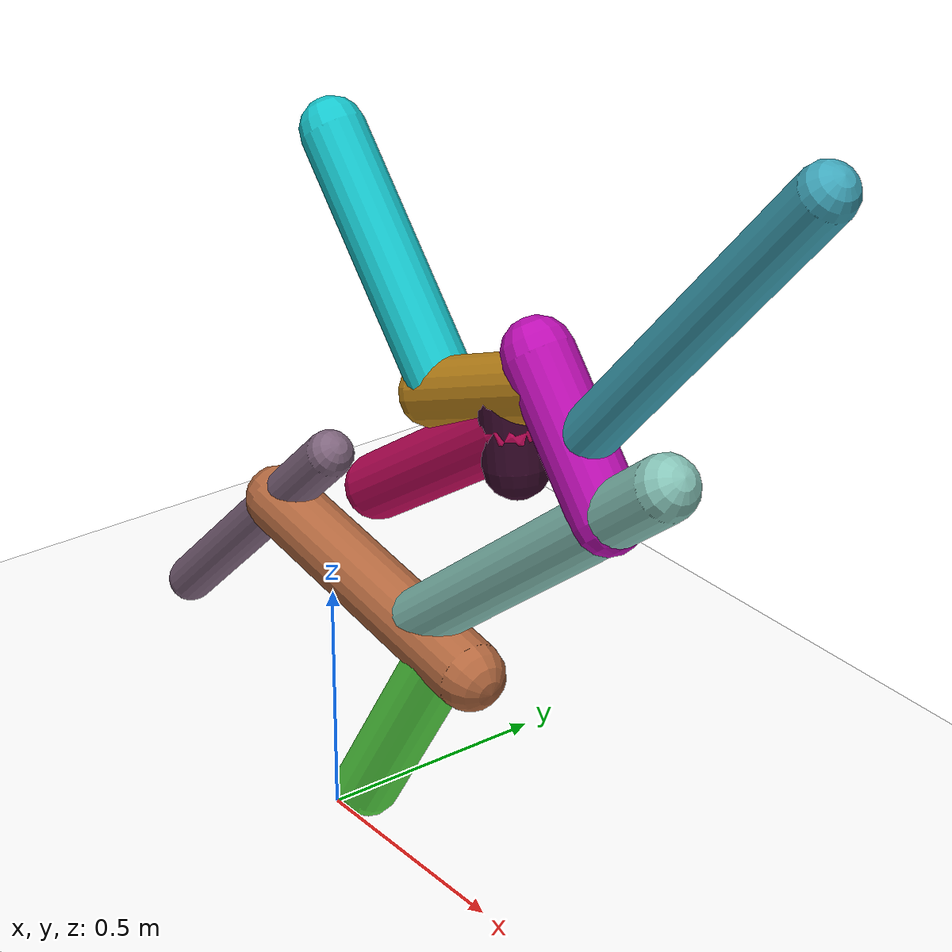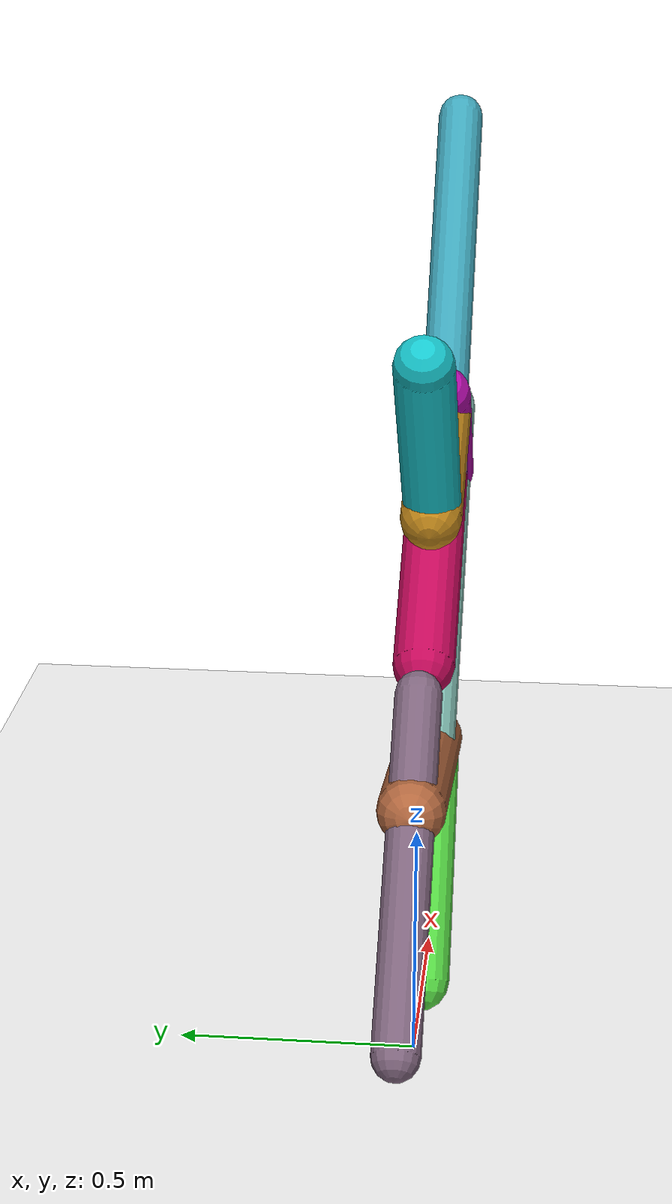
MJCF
<mujoco model="morphology">
  <option timestep="0.01"/>
  <default>
    <default class="/"/>
    <default class="0/"/>
    <default class="0/1/"/>
    <default class="0/1/2/"/>
    <default class="0/1/3/"/>
    <default class="0/1/3/4/"/>
    <default class="0/1/3/4/5/"/>
    <default class="0/1/3/4/5/6/"/>
    <default class="0/1/3/4/5/6/7/"/>
    <default class="0/1/3/4/5/8/"/>
    <default class="0/1/3/4/9/"/>
  </default>
  <asset>
    <texture name="texplane" type="2d" builtin="checker" rgb1="0.10000000000000001 0.20000000000000001 0.29999999999999999" rgb2="0.20000000000000001 0.29999999999999999 0.40000000000000002" width="300" height="300"/>
    <material name="MatPlane" class="/" texture="texplane" texrepeat="20 20" specular="1" shininess="1" reflectance="0.5"/>
  </asset>
  <worldbody>
    <light name="//unnamed_light_0" class="/" directional="true" pos="0 0 1.5" dir="0 0 -1.3" cutoff="100" exponent="1" diffuse="1 1 1" specular="0.10000000000000001 0.10000000000000001 0.10000000000000001"/>
    <geom name="ground" class="/" type="plane" size="15 15 0.5" material="MatPlane" rgba="1 1 1 1"/>
    <site name="body" class="/" size="9.9999999999999995e-07 9.9999999999999995e-07 9.9999999999999995e-07" pos="0 0 0.80912814140319822"/>
    <body pos="0 0 0.80912814140319822" name="0/">
      <joint name="0/rootx/" class="/" type="slide" axis="1 0 0" limited="false" stiffness="0" armature="0" damping="0"/>
      <joint name="0/rootz/" class="/" type="slide" axis="0 0 1" limited="false" stiffness="0" armature="0" damping="0"/>
      <joint name="0/rooty/" class="/" type="hinge" axis="0 1 0" limited="false" stiffness="0" armature="0" damping="0"/>
      <geom name="0/geom" class="0/" type="capsule" contype="1" conaffinity="1" condim="3" size="0.048815106930779298" rgba="0.49522148160598389 0.39349949963425968 0.48867673529175271 1" friction="0.59999999999999998 0.10000000000000001 0.10000000000000001" fromto="0 0 0 -0.54710289310605309 0 -0.52064594868006409"/>
      <site name="0/end0" class="0/" size="0.0050000000000000001" pos="-0.54710289310605309 0 -0.52064594868006409"/>
      <site name="0/attach1" class="0/" size="9.9999999999999995e-07 9.9999999999999995e-07 9.9999999999999995e-07" pos="-0.18511883635635593 0 -0.17616681137641405"/>
      <body pos="-0.18511883635635593 0 -0.17616681137641405" name="0/1/">
        <joint name="0/1/joint/" class="0/" type="hinge" axis="0 1 0" limited="true" range="-64.87081465785316 64.87081465785316"/>
        <geom name="0/1/geom" class="0/1/" type="capsule" contype="1" conaffinity="1" condim="3" size="0.069921119057638925" rgba="0.7020025758812044 0.40765866763480219 0.24688018540858792 1" friction="0.59999999999999998 0.10000000000000001 0.10000000000000001" fromto="0 0 0 0.63964047168249838 0 -0.1098166180766017"/>
        <site name="0/1/end1" class="0/1/" size="0.0050000000000000001" pos="0.63964047168249838 0 -0.1098166180766017"/>
        <site name="0/1/attach2" class="0/1/" size="9.9999999999999995e-07 9.9999999999999995e-07 9.9999999999999995e-07" pos="0.56117987754338583 0 -0.096346117878304244"/>
        <body pos="0.56117987754338583 0 -0.096346117878304244" name="0/1/2/">
          <geom name="0/1/2/geom" class="0/1/2/" type="capsule" contype="1" conaffinity="1" condim="3" size="0.066952344589786952" rgba="0.36561100680459679 0.9082259192519484 0.28930254901571673 1" friction="0.59999999999999998 0.10000000000000001 0.10000000000000001" fromto="0 0 0 -0.26451337577801504 0 -0.43661518328303356"/>
          <site name="0/1/2/end2" class="0/1/2/" size="0.0050000000000000001" pos="-0.26451337577801504 0 -0.43661518328303356"/>
        </body>
        <site name="0/1/attach3" class="0/1/" size="9.9999999999999995e-07 9.9999999999999995e-07 9.9999999999999995e-07" pos="0.45610852747122271 0 -0.078306952390046772"/>
        <body pos="0.45610852747122271 0 -0.078306952390046772" name="0/1/3/">
          <joint name="0/1/3/joint/" class="0/1/" type="hinge" axis="0 1 0" limited="true" range="-44.588118126704963 44.588118126704963"/>
          <geom name="0/1/3/geom" class="0/1/3/" type="capsule" contype="1" conaffinity="1" condim="3" size="0.061130751295405225" rgba="0.52147329523998864 0.76232566544576441 0.71500421477446607 1" friction="0.59999999999999998 0.10000000000000001 0.10000000000000001" fromto="0 0 0 0.71523366048806913 0 0.58399454603080825"/>
          <site name="0/1/3/end3" class="0/1/3/" size="0.0050000000000000001" pos="0.71523366048806913 0 0.58399454603080825"/>
          <site name="0/1/3/attach4" class="0/1/3/" size="9.9999999999999995e-07 9.9999999999999995e-07 9.9999999999999995e-07" pos="0.57112356155856225 0 0.4663273884960768"/>
          <body pos="0.57112356155856225 0 0.4663273884960768" name="0/1/3/4/">
            <geom name="0/1/3/4/geom" class="0/1/3/4/" type="capsule" contype="1" conaffinity="1" condim="3" size="0.066893527556024984" rgba="0.7418478450806707 0.053503626459094678 0.70436886687079292 1" friction="0.59999999999999998 0.10000000000000001 0.10000000000000001" fromto="0 0 0 -0.19843321068453745 0 0.23829618064783742"/>
            <site name="0/1/3/4/end4" class="0/1/3/4/" size="0.0050000000000000001" pos="-0.19843321068453745 0 0.23829618064783742"/>
            <site name="0/1/3/4/attach5" class="0/1/3/4/" size="9.9999999999999995e-07 9.9999999999999995e-07 9.9999999999999995e-07" pos="-0.15890194460324603 0 0.19082353385223125"/>
            <body pos="-0.15890194460324603 0 0.19082353385223125" name="0/1/3/4/5/">
              <geom name="0/1/3/4/5/geom" class="0/1/3/4/5/" type="capsule" contype="1" conaffinity="1" condim="3" size="0.066099062699634004" rgba="0.76108399604333576 0.53248463280178004 0.10044474791756741 1" friction="0.59999999999999998 0.10000000000000001 0.10000000000000001" fromto="0 0 0 -0.34094821850184376 0 -0.14075130238806111"/>
              <site name="0/1/3/4/5/end5" class="0/1/3/4/5/" size="0.0050000000000000001" pos="-0.34094821850184376 0 -0.14075130238806111"/>
              <site name="0/1/3/4/5/attach6" class="0/1/3/4/5/" size="9.9999999999999995e-07 9.9999999999999995e-07 9.9999999999999995e-07" pos="-0.11271286992680281 0 -0.046530476996781346"/>
              <body pos="-0.11271286992680281 0 -0.046530476996781346" name="0/1/3/4/5/6/">
                <geom name="0/1/3/4/5/6/geom" class="0/1/3/4/5/6/" type="capsule" contype="1" conaffinity="1" condim="3" size="0.064129702803482236" rgba="0.22051602934373893 0.035652771942122574 0.16956682233079368 1" friction="0.59999999999999998 0.10000000000000001 0.10000000000000001" fromto="0 0 0 0.019492308183523654 0 -0.14134449058485699"/>
                <site name="0/1/3/4/5/6/end6" class="0/1/3/4/5/6/" size="0.0050000000000000001" pos="0.019492308183523654 0 -0.14134449058485699"/>
                <site name="0/1/3/4/5/6/attach7" class="0/1/3/4/5/6/" size="9.9999999999999995e-07 9.9999999999999995e-07 9.9999999999999995e-07" pos="0.0099760667867213448 0 -0.072339410229596557"/>
                <body pos="0.0099760667867213448 0 -0.072339410229596557" name="0/1/3/4/5/6/7/">
                  <joint name="0/1/3/4/5/6/7/joint/" class="0/1/3/4/5/6/" type="hinge" axis="0 1 0" limited="true" range="-40.960630070853135 40.960630070853135"/>
                  <geom name="0/1/3/4/5/6/7/geom" class="0/1/3/4/5/6/7/" type="capsule" contype="1" conaffinity="1" condim="3" size="0.065435865530095755" rgba="0.76702668489690451 0.030120223029504345 0.35436504346318898 1" friction="0.59999999999999998 0.10000000000000001 0.10000000000000001" fromto="0 0 0 -0.41659228180475066 0 -0.28644921213730717"/>
                  <site name="0/1/3/4/5/6/7/end7" class="0/1/3/4/5/6/7/" size="0.0050000000000000001" pos="-0.41659228180475066 0 -0.28644921213730717"/>
                </body>
              </body>
              <site name="0/1/3/4/5/attach8" class="0/1/3/4/5/" size="9.9999999999999995e-07 9.9999999999999995e-07 9.9999999999999995e-07" pos="-0.30303347871668346 0 -0.12509922176445495"/>
              <body pos="-0.30303347871668346 0 -0.12509922176445495" name="0/1/3/4/5/8/">
                <geom name="0/1/3/4/5/8/geom" class="0/1/3/4/5/8/" type="capsule" contype="1" conaffinity="1" condim="3" size="0.062672915134791091" rgba="0.087341941970026982 0.77646181218119659 0.80311820512341148 1" friction="0.59999999999999998 0.10000000000000001 0.10000000000000001" fromto="0 0 0 -0.3473289282050821 0 0.40112549306160927"/>
                <site name="0/1/3/4/5/8/end8" class="0/1/3/4/5/8/" size="0.0050000000000000001" pos="-0.3473289282050821 0 0.40112549306160927"/>
              </body>
            </body>
            <site name="0/1/3/4/attach9" class="0/1/3/4/" size="9.9999999999999995e-07 9.9999999999999995e-07 9.9999999999999995e-07" pos="-0.086873855953834539 0 0.10432582328600253"/>
            <body pos="-0.086873855953834539 0 0.10432582328600253" name="0/1/3/4/9/">
              <geom name="0/1/3/4/9/geom" class="0/1/3/4/9/" type="capsule" contype="1" conaffinity="1" condim="3" size="0.051981237176008221" rgba="0.24589353384551282 0.65142033549991507 0.73183445032476213 1" friction="0.59999999999999998 0.10000000000000001 0.10000000000000001" fromto="0 0 0 0.55982002757071037 0 0.63530391104268746"/>
              <site name="0/1/3/4/9/end9" class="0/1/3/4/9/" size="0.0050000000000000001" pos="0.55982002757071037 0 0.63530391104268746"/>
            </body>
          </body>
        </body>
      </body>
      <camera name="0/side" class="0/" mode="trackcom" pos="0.40000000000000002 -4 0.20000000000000001" quat="0.70699999999999996 0.70699999999999996 0 0"/>
    </body>
  </worldbody>
  <actuator>
    <motor name="0/1/motor" class="0/1/" ctrllimited="true" ctrlrange="-1 1" gear="50" joint="0/1/joint/"/>
    <motor name="0/1/3/motor" class="0/1/3/" ctrllimited="true" ctrlrange="-1 1" gear="78" joint="0/1/3/joint/"/>
    <motor name="0/1/3/4/5/6/7/motor" class="0/1/3/4/5/6/7/" ctrllimited="true" ctrlrange="-1 1" gear="72" joint="0/1/3/4/5/6/7/joint/"/>
  </actuator>
  <sensor>
    <subtreelinvel name="velocity" body="0/"/>
  </sensor>
</mujoco>
